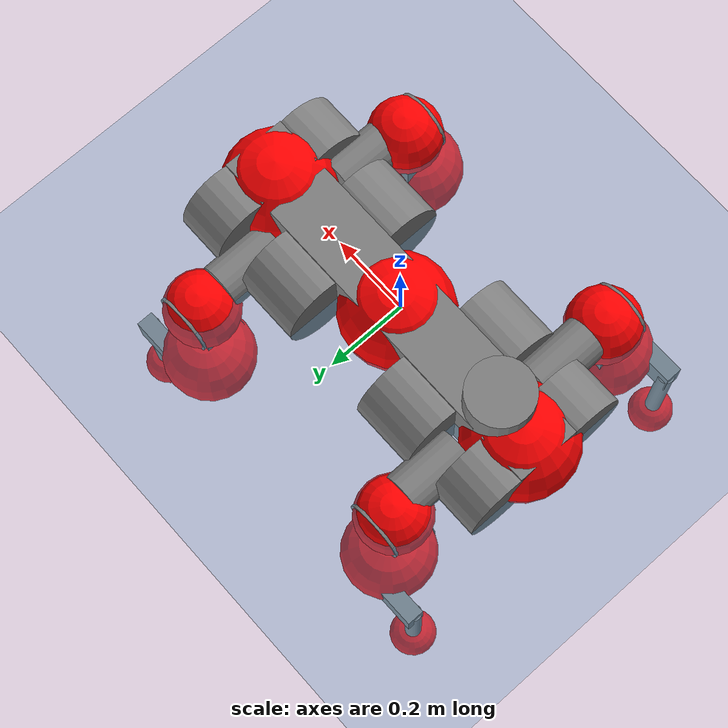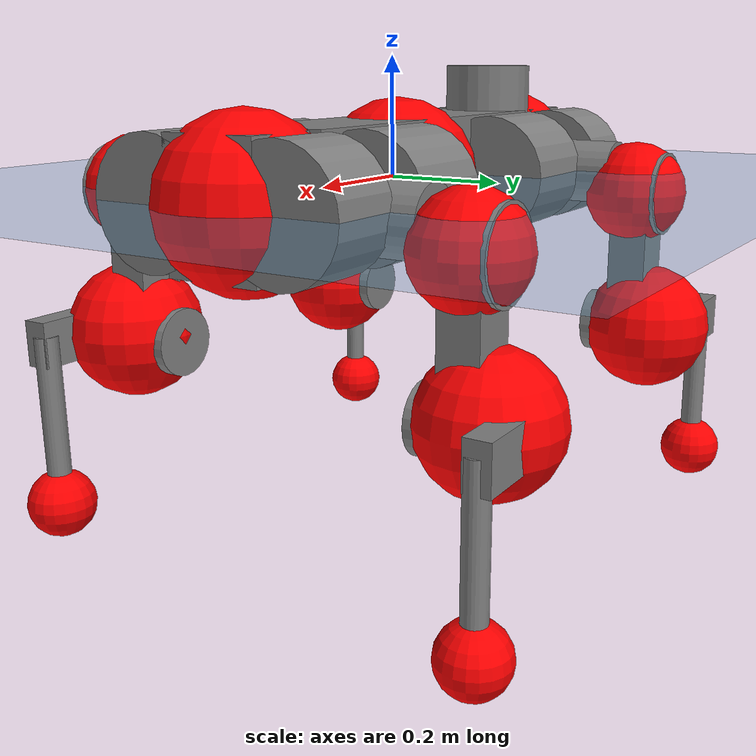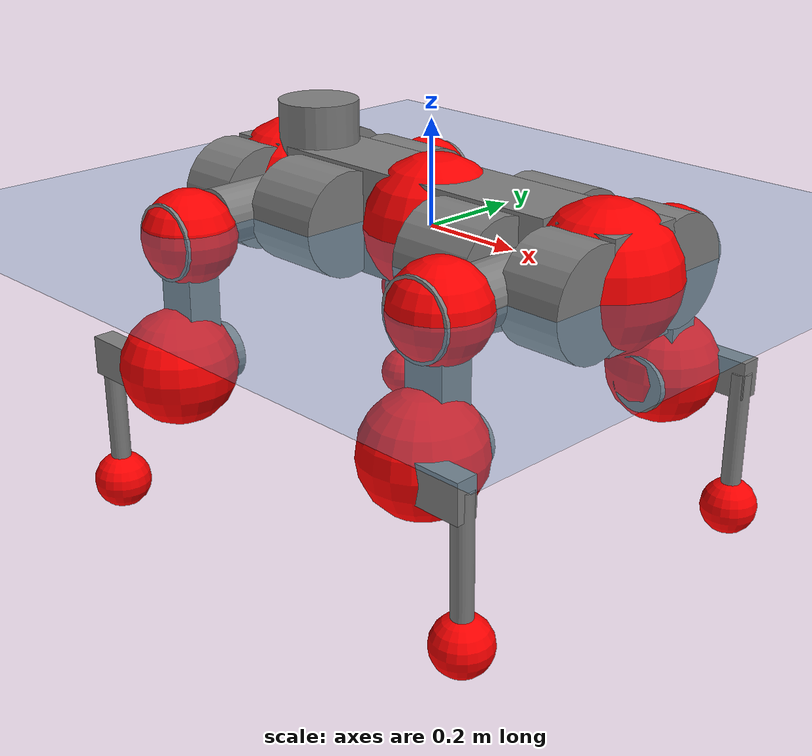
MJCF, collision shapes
<mujoco model="anymal_c">
  <compiler angle="radian" assetdir="assets" balanceinertia="true" inertiafromgeom="false"/>

  <option timestep="0.005" density="1.2" viscosity="2e-05"/>

  <size nkey="1"/>

  <visual>
    <quality shadowsize="8192"/>
    <map shadowclip="0.5"/>
  </visual>

  <default>
    <default class="/">
      <material specular="0" shininess="0.25"/>
      <geom contype="0" conaffinity="0" group="1" solref="-1000 -80"/>
      <site size="0.01 0.005 0.005" group="5"/>
      <general forcelimited="true" forcerange="-80 80" biastype="affine" gainprm="80" biasprm="0 -80 -2"/>
      <default class="anymal_c">
        <joint armature="0.01" damping="0.01" frictionloss="0.1"/>
        <default class="visual">
          <geom type="mesh" group="2"/>
          <default class="visual_zflip"/>
        </default>
        <default class="collision">
          <geom type="cylinder" group="3"/>
          <default class="foot">
            <geom size="0.03 0 0" type="sphere" condim="6" priority="1" friction="0.8 0.02 0.01" solimp="0.015 1 0.03"/>
          </default>
        </default>
      </default>
      <default class="reward_collision_sphere">
        <geom group="5" rgba="1 0 0 1"/>
      </default>
    </default>
  </default>

  <asset>
    <texture type="skybox" colorspace="auto" name="//unnamed_texture_0" builtin="gradient" rgb1="0.95 0.95 0.95" rgb2="0.95 0.95 0.95" width="100" height="600"/>
    <texture type="2d" colorspace="auto" name="texplane" builtin="checker" rgb1="0.345 0.575 0.748" rgb2="0.345 0.575 0.748" markrgb="1 1 1" width="512" height="512"/>
    <texture type="2d" colorspace="linear" name="base" file="base.png"/>
    <texture type="2d" colorspace="linear" name="top_shell" file="top_shell.png"/>
    <texture type="2d" colorspace="linear" name="bottom_shell" file="bottom_shell.png"/>
    <texture type="2d" colorspace="linear" name="remote" file="remote.png"/>
    <texture type="2d" colorspace="linear" name="hatch" file="hatch.png"/>
    <texture type="2d" colorspace="linear" name="handle" file="handle.png"/>
    <texture type="2d" colorspace="linear" name="face" file="face.png"/>
    <texture type="2d" colorspace="linear" name="battery" file="battery.png"/>
    <texture type="2d" colorspace="linear" name="lidar_cage" file="lidar_cage.png"/>
    <texture type="2d" colorspace="linear" name="depth_camera" file="depth_camera.png"/>
    <texture type="2d" colorspace="linear" name="wide_angle_camera" file="wide_angle_camera.png"/>
    <texture type="2d" colorspace="linear" name="lidar" file="lidar.png"/>
    <texture type="2d" colorspace="linear" name="drive" file="drive.png"/>
    <texture type="2d" colorspace="linear" name="hip_l" file="hip_l.png"/>
    <texture type="2d" colorspace="linear" name="shank_l" file="shank_l.png"/>
    <texture type="2d" colorspace="linear" name="foot" file="foot.png"/>
    <texture type="2d" colorspace="linear" name="thigh" file="thigh.png"/>
    <texture type="2d" colorspace="linear" name="shank_r" file="shank_r.png"/>
    <texture type="2d" colorspace="linear" name="hip_r" file="hip_r.png"/>
    <material name="MatPlane" class="/" texture="texplane" texuniform="true" texrepeat="2 2" specular="0.9" shininess="0.5"/>
    <material name="black_plastic" class="/" rgba="0.007 0.007 0.007 1"/>
    <material name="green" class="/" rgba="0.052 0.178 0.033 1"/>
    <material name="red" class="/" rgba="0.178 0.006 0.005 1"/>
    <material name="yellow" class="/" rgba="0.178 0.119 0.006 1"/>
    <material name="lwl" class="/" rgba="0.8 0.8 0.8 1"/>
    <material name="base" class="/" texture="base"/>
    <material name="top_shell" class="/" texture="top_shell"/>
    <material name="bottom_shell" class="/" texture="bottom_shell"/>
    <material name="hip_l" class="/" texture="hip_l"/>
    <material name="thigh" class="/" texture="thigh"/>
    <material name="shank_l" class="/" texture="shank_l"/>
    <material name="foot" class="/" texture="foot"/>
    <material name="hip_r" class="/" texture="hip_r"/>
    <material name="shank" class="/" texture="shank_r"/>
    <material name="hatch" class="/" texture="hatch"/>
    <material name="remote" class="/" texture="remote"/>
    <material name="handle" class="/" texture="handle"/>
    <material name="face" class="/" texture="face"/>
    <material name="depth_camera" class="/" texture="depth_camera"/>
    <material name="wide_angle_camera" class="/" texture="wide_angle_camera"/>
    <material name="battery" class="/" texture="battery"/>
    <material name="lidar_cage" class="/" texture="lidar_cage"/>
    <material name="lidar" class="/" texture="lidar"/>
    <material name="drive" class="/" texture="drive"/>
    <mesh name="base_0" class="/" file="base_0.obj"/>
    <mesh name="base_1" class="/" file="base_1.obj"/>
    <mesh name="base_2" class="/" file="base_2.obj"/>
    <mesh name="base_3" class="/" file="base_3.obj"/>
    <mesh name="base_4" class="/" file="base_4.obj"/>
    <mesh name="base_5" class="/" file="base_5.obj"/>
    <mesh name="top_shell" class="/" file="top_shell.obj"/>
    <mesh name="bottom_shell" class="/" file="bottom_shell.obj"/>
    <mesh name="remote" class="/" file="remote.obj"/>
    <mesh name="handle" class="/" file="handle.obj"/>
    <mesh name="face" class="/" file="face.obj"/>
    <mesh name="wide_angle_camera" class="/" file="wide_angle_camera.obj"/>
    <mesh name="depth_camera" class="/" file="depth_camera.obj"/>
    <mesh name="battery" class="/" file="battery.obj"/>
    <mesh name="lidar_cage" class="/" file="lidar_cage.obj"/>
    <mesh name="lidar" class="/" file="lidar.obj"/>
    <mesh name="drive" class="/" file="drive.obj"/>
    <mesh name="hip_l" class="/" file="hip_l.obj"/>
    <mesh name="thigh" class="/" file="thigh.obj"/>
    <mesh name="shank_l" class="/" file="shank_l.obj"/>
    <mesh name="foot" class="/" file="foot.obj"/>
    <mesh name="hip_r" class="/" file="hip_r.obj"/>
    <mesh name="hatch" class="/" file="hatch.obj"/>
    <mesh name="shank_r" class="/" file="shank_r.obj"/>
  </asset>

  <worldbody>
    <geom name="floor" class="/" size="100 100 0.125" type="plane" group="0" material="MatPlane"/>
    <light name="toplight_shadow" class="/" pos="0 0 5" dir="0.0990148 0.0990148 -0.990148" type="directional" ambient="0.04 0.04 0.04" diffuse="0.55 0.55 0.55" specular="0.12 0.12 0.12"/>
    <light name="toplight_fill" class="/" pos="0 0 5" dir="0.0990148 0.0990148 -0.990148" type="directional" castshadow="false" ambient="0.04 0.04 0.04" diffuse="0.3 0.3 0.3" specular="0.08 0.08 0.08"/>
    <body name="trunk" childclass="anymal_c" pos="-0.000980606 0.0109229 -0.00132659" quat="1 -1.04943e-05 -9.66364e-05 -8.34564e-06">
      <inertial pos="-0.00258271 0.0116741 0.0436114" quat="0.533797 0.435836 0.528384 0.495901" mass="27.5943" diaginertia="0.374475 7.71007 0.105705"/>
      <joint name="//unnamed_joint_0" type="free" armature="0" damping="0" frictionloss="0"/>
      <geom name="//unnamed_geom_1" class="visual" material="green" mesh="base_0"/>
      <geom name="//unnamed_geom_2" class="visual" material="yellow" mesh="base_1"/>
      <geom name="//unnamed_geom_3" class="visual" material="red" mesh="base_2"/>
      <geom name="//unnamed_geom_4" class="visual" material="black_plastic" mesh="base_3"/>
      <geom name="//unnamed_geom_5" class="visual" material="lwl" mesh="base_4"/>
      <geom name="//unnamed_geom_6" class="visual" material="base" mesh="base_5"/>
      <geom name="trunk_1" class="collision" size="0.325606 0.0785947 0.10105" type="box"/>
      <geom name="trunk_2" class="collision" size="0.10105 0.0814016" pos="0.191429 0.113544 0" quat="0.707107 0 0.707107 0"/>
      <geom name="trunk_3" class="collision" size="0.10105 0.0814016" pos="-0.191429 0.113544 0" quat="0.707107 0 0.707107 0"/>
      <geom name="trunk_4" class="collision" size="0.10105 0.0814016" pos="0.191429 -0.113544 0" quat="0.707107 0 0.707107 0"/>
      <geom name="trunk_5" class="collision" size="0.10105 0.0814016" pos="-0.191429 -0.113544 0" quat="0.707107 0 0.707107 0"/>
      <geom name="//unnamed_geom_12" class="visual" material="top_shell" mesh="top_shell"/>
      <geom name="//unnamed_geom_13" class="visual" material="bottom_shell" mesh="bottom_shell"/>
      <geom name="//unnamed_geom_14" class="visual" material="remote" mesh="remote"/>
      <geom name="//unnamed_geom_15" class="visual" material="handle" mesh="handle"/>
      <geom name="//unnamed_geom_16" class="visual" pos="0.364816 0 0" quat="1 0 0 0" material="face" mesh="face"/>
      <geom name="trunk_6" class="collision" size="0.0617529 0.0785947 0.10105" pos="0.413223 0 0" type="box"/>
      <geom name="//unnamed_geom_18" class="collision" size="0.10105 0.0617529" pos="0.413223 0.113544 0" quat="0.707107 0 0.707107 0"/>
      <geom name="//unnamed_geom_19" class="collision" size="0.10105 0.0617529" pos="0.413223 -0.113544 0" quat="0.707107 0 0.707107 0"/>
      <geom name="//unnamed_geom_20" class="visual" pos="0.406314 0 -0.0251855" quat="0.965926 0 0.258819 0" material="depth_camera" mesh="depth_camera"/>
      <geom name="//unnamed_geom_21" class="visual" pos="0.451509 0 0.0129663" material="wide_angle_camera" mesh="wide_angle_camera"/>
      <geom name="//unnamed_geom_22" class="visual_zflip" pos="-0.364816 0 0" quat="0 0 0 1" material="face" mesh="face"/>
      <geom name="trunk_7" class="collision" size="0.0617529 0.0785947 0.10105" pos="-0.413223 0 0" quat="0 0 0 1" type="box"/>
      <geom name="//unnamed_geom_24" class="collision" size="0.10105 0.0617529" pos="-0.413223 -0.113544 0" quat="0 -0.707107 0 0.707107"/>
      <geom name="//unnamed_geom_25" class="collision" size="0.10105 0.0617529" pos="-0.413223 0.113544 0" quat="0 -0.707107 0 0.707107"/>
      <geom name="//unnamed_geom_26" class="visual" pos="-0.406314 0 -0.0251855" quat="0 -0.258819 0 0.965926" material="depth_camera" mesh="depth_camera"/>
      <geom name="//unnamed_geom_27" class="visual_zflip" pos="-0.451509 0 0.0129663" quat="0 0 0 1" material="wide_angle_camera" mesh="wide_angle_camera"/>
      <geom name="//unnamed_geom_28" class="visual" material="battery" mesh="battery"/>
      <geom name="//unnamed_geom_29" class="visual" pos="0 0.133757 0.025268" quat="0.683013 -0.183013 0.183013 0.683013" material="depth_camera" mesh="depth_camera"/>
      <geom name="//unnamed_geom_30" class="visual" pos="0 -0.133757 0.025268" quat="0.683013 0.183013 0.183013 -0.683013" material="depth_camera" mesh="depth_camera"/>
      <geom name="//unnamed_geom_31" class="visual" pos="-0.320369 0 0.0636624" quat="1 0 0 0" material="lidar_cage" mesh="lidar_cage"/>
      <geom name="trunk_8" class="collision" size="0.0785947 0.0673668" pos="-0.320369 0 0.115632"/>
      <geom name="//unnamed_geom_33" class="visual" pos="-0.320369 0.00029148 0.123167" quat="0.707107 0 0 -0.707107" material="lidar" mesh="lidar"/>
      <geom name="//unnamed_geom_34" class="visual" pos="0.263952 0.168425 1.30393e-08" quat="0.258819 0.965926 0 0" material="drive" mesh="drive"/>
      <geom name="//unnamed_geom_35" class="visual" pos="0.263952 -0.168425 -1.30393e-08" quat="0.258819 -0.965926 0 0" material="drive" mesh="drive"/>
      <geom name="//unnamed_geom_36" class="visual" pos="-0.263952 0.168425 -1.30393e-08" quat="0 0 0.965926 -0.258819" material="drive" mesh="drive"/>
      <geom name="//unnamed_geom_37" class="visual" pos="-0.263952 -0.168425 1.30393e-08" quat="0 0 -0.965926 -0.258819" material="drive" mesh="drive"/>
      <geom name="//unnamed_geom_38" class="visual" pos="0.102096 0 0.0632293" quat="1 0 0 0" material="hatch" mesh="hatch"/>
      <geom name="//unnamed_geom_39" class="reward_collision_sphere" size="0.134734"/>
      <geom name="//unnamed_geom_40" class="reward_collision_sphere" size="0.134734" pos="0.396061 0 0"/>
      <geom name="//unnamed_geom_41" class="reward_collision_sphere" size="0.134734" pos="-0.396061 0 0"/>
      <site name="imu" pos="0.166046 -0.0274778 0.0946193" size="0.0112278"/>
      <camera name="track" pos="0 -3.24411 0" quat="0.707107 0.707107 0 0" mode="trackcom"/>
      <camera name="ego_camera" pos="0.396061 0 -0.0346462" quat="-0.5 -0.5 0.5 0.5"/>
      <body name="LF_HIP" pos="0.254595 0.153555 -0.0128723" quat="0.261241 0.96526 0.00495023 0.00120814">
        <inertial pos="0.0523062 -0.0251899 -0.0145677" quat="-0.122129 0.708224 -0.140397 0.681022" mass="4.46171" diaginertia="0.00304368 0.0604243 0.00154404"/>
        <joint name="LF_HAA" pos="0 0 0" axis="1 0.000447077 -0.000766978" range="-1.02911 0.334767" armature="0.0120766" damping="0.0627753" frictionloss="0.0589428"/>
        <geom name="//unnamed_geom_42" class="visual" pos="0 0.000767045 -0.000125986" quat="0.258819 -0.965926 0 0" material="hip_l" mesh="hip_l"/>
        <geom name="//unnamed_geom_43" class="visual" pos="0.0527201 -0.0733815 -0.0367758" quat="0.183013 -0.683013 0.683013 0.183013" material="drive" mesh="drive"/>
        <geom name="//unnamed_geom_44" class="collision" size="0.056139 0.0785947" pos="0.0527201 -0.0193994 -0.0059808" quat="-0.353553 -0.612372 0.612372 -0.353553"/>
        <body name="LF_THIGH" pos="0.0535608 -0.13296 -0.0330398" quat="0.1863 -0.681447 0.684506 0.179927">
          <inertial pos="0.0171326 -0.00858304 -0.215263" quat="0.992466 0.00624315 -0.117037 0.0357143" mass="4.33677" diaginertia="0.0155761 0.337169 0.0021482"/>
          <joint name="LF_HFE" pos="0 0 0" axis="0.998439 0.0343759 0.0440316" stiffness="0.00492527" range="-3.28155 2.8687" armature="0.0047329" damping="0" frictionloss="0.0799277"/>
          <geom name="//unnamed_geom_45" class="visual" pos="-0.0147612 -2.32603e-05 0" quat="0.707107 0 0 -0.707107" material="thigh" mesh="thigh"/>
          <geom name="//unnamed_geom_46" class="collision" size="0.0729808 0.0449112" pos="0.0352054 0 0" quat="0.5 0.5 -0.5 -0.5"/>
          <geom name="//unnamed_geom_47" class="collision" size="0.0421043 0.0336834 0.158665" pos="0.0264041 0 -0.1224" quat="0.707107 0 0 -0.707107" type="box"/>
          <geom name="//unnamed_geom_48" class="visual" pos="0.0882775 0 -0.246854" quat="1 0 0 0" material="drive" mesh="drive"/>
          <geom name="//unnamed_geom_49" class="collision" size="0.056139 0.0785947" pos="0.0266681 0 -0.246854" quat="0.707107 0 0.707107 0"/>
          <geom name="//unnamed_geom_50" class="reward_collision_sphere" size="0.0898225" pos="0.0220034 0 0"/>
          <body name="LF_SHANK" pos="0.0932791 0.0134042 -0.241114" quat="0.999992 -0.00266235 0.00045872 -0.00278139">
            <inertial pos="-0.00441665 -0.0990006 -0.0551525" quat="0.993228 -0.114081 -0.00373558 -0.02166" mass="0.863353" diaginertia="0.00615725 0.0866556 0.000650439"/>
            <joint name="LF_KFE" pos="0 0 0" axis="0.999996 0.000536622 -0.00291695" stiffness="0.00424136" range="-2.85071 3.15445" armature="0.0160196" damping="0.0125993" frictionloss="0.106184"/>
            <geom name="//unnamed_geom_51" class="visual" pos="-0.00481332 -0.0256649 0" quat="0.707107 0 0 -0.707107" material="shank_l" mesh="shank_l"/>
            <geom name="LF_kfe_act" class="collision" size="0.0673668 0.0224556" pos="0.0176027 0 0" quat="0.5 0.5 -0.5 -0.5"/>
            <geom name="//unnamed_geom_53" class="collision" size="0.0645588 0.0378939 0.0213328" pos="0.0176027 -0.0932664 0" quat="0.5 0.5 -0.5 -0.5" type="box"/>
            <geom name="//unnamed_geom_54" class="visual" pos="0.0114869 -0.15093 -0.292734" quat="0.382683 0 0 -0.92388" material="foot" mesh="foot"/>
            <geom name="LF_calf" class="collision" size="0.0196487 0.158595" pos="0.0114858 -0.14266 -0.146367" quat="0.707107 0 0 -0.707107"/>
            <geom name="LF_foot" class="foot" size="0.0312949" pos="0.0114858 -0.14266 -0.273246" quat="0.707107 0 0 -0.707107"/>
            <geom name="//unnamed_geom_57" class="reward_collision_sphere" size="0.112278" pos="-0.0440068 0 0"/>
            <geom name="//unnamed_geom_58" class="reward_collision_sphere" size="0.056139" pos="0.0114858 -0.14266 -0.273246"/>
            <site name="LF_foot" class="foot" pos="0.0114858 -0.14266 -0.273246" quat="0.707107 0 0 -0.707107" size="0.0112278"/>
          </body>
        </body>
      </body>
      <body name="RF_HIP" pos="0.264851 -0.161527 0.00637657" quat="0.259151 -0.965836 -0.00103756 3.05848e-05">
        <inertial pos="0.0555835 0.0211979 -0.0109825" quat="0.133211 0.680372 0.125427 0.70966" mass="4.48073" diaginertia="0.00323221 0.0649959 0.00135721"/>
        <joint name="RF_HAA" pos="0 0 0" axis="0.99892 0.0209527 -0.0414764" stiffness="0.0264051" range="-0.509582 0.722416" armature="0.00889122" damping="0" frictionloss="0.0817078"/>
        <geom name="//unnamed_geom_59" class="visual" pos="0 -0.000767038 -0.000125986" quat="0.258819 0.965926 0 0" material="hip_r" mesh="hip_r"/>
        <geom name="//unnamed_geom_60" class="visual" pos="0.0527201 0.0733815 -0.0367758" quat="0.183013 0.683013 0.683013 -0.183013" material="drive" mesh="drive"/>
        <geom name="//unnamed_geom_61" class="collision" size="0.056139 0.0785947" pos="0.0527201 0.0193994 -0.0059808" quat="-0.353553 0.612372 0.612372 0.353553"/>
        <body name="RF_THIGH" pos="0.0393268 0.102755 -0.0445514" quat="0.18376 0.681973 0.684642 -0.180029">
          <inertial pos="0.0344397 0.0150699 -0.212058" quat="0.990687 -0.0297335 -0.0609343 0.118076" mass="3.24439" diaginertia="0.0134394 0.288767 0.00186952"/>
          <joint name="RF_HFE" pos="0 0 0" axis="0.999861 -0.0131478 -0.0102262" stiffness="0.028096" range="-2.86482 3.14309" armature="0.0102743" damping="0" frictionloss="0.110092"/>
          <geom name="//unnamed_geom_62" class="visual" pos="-0.0147612 -2.32603e-05 0" quat="0.707107 0 0 -0.707107" material="thigh" mesh="thigh"/>
          <geom name="//unnamed_geom_63" class="collision" size="0.0729808 0.0449112" pos="0.0352054 0 0" quat="0.5 0.5 0.5 0.5"/>
          <geom name="//unnamed_geom_64" class="collision" size="0.0421043 0.0336834 0.158665" pos="0.0264041 0 -0.1224" quat="0.707107 0 0 0.707107" type="box"/>
          <geom name="//unnamed_geom_65" class="visual" pos="0.0882775 0 -0.246854" quat="1 0 0 0" material="drive" mesh="drive"/>
          <geom name="//unnamed_geom_66" class="collision" size="0.056139 0.0785947" pos="0.0266681 0 -0.246854" quat="0.707107 0 0.707107 0"/>
          <geom name="//unnamed_geom_67" class="reward_collision_sphere" size="0.0898225" pos="0.0220034 0 0"/>
          <body name="RF_SHANK" pos="0.102226 -0.0008578 -0.238106" quat="0.999981 -0.00104788 0.00595749 -0.00102818">
            <inertial pos="-0.000964849 0.100505 -0.0795768" quat="0.992357 0.103357 -0.0091168 0.0667925" mass="0.822227" diaginertia="0.00514089 0.105466 0.000513137"/>
            <joint name="RF_KFE" pos="0 0 0" axis="0.997252 0.0187128 0.0716779" stiffness="0.0316905" range="-3.18768 3.15898" armature="0.00421428" damping="0" frictionloss="0.18039"/>
            <geom name="//unnamed_geom_68" class="visual" pos="-0.00481329 0.0256648 0" quat="0.707107 0 0 0.707107" material="shank" mesh="shank_r"/>
            <geom name="RF_kfe_act" class="collision" size="0.0673668 0.0224556" pos="0.0176027 0 0" quat="0.5 0.5 0.5 0.5"/>
            <geom name="//unnamed_geom_70" class="collision" size="0.0645588 0.0378939 0.0213328" pos="0.0176027 0.0932664 0" quat="0.5 0.5 0.5 0.5" type="box"/>
            <geom name="//unnamed_geom_71" class="visual" pos="0.0114846 0.15093 -0.292734" quat="0.382683 0 0 0.92388" material="foot" mesh="foot"/>
            <geom name="RF_calf" class="collision" size="0.0196487 0.158595" pos="0.0114858 0.14266 -0.146367" quat="0.707107 0 0 0.707107"/>
            <geom name="RF_foot" class="foot" size="0.0402422" pos="0.0114858 0.14266 -0.273246" quat="0.707107 0 0 0.707107"/>
            <geom name="//unnamed_geom_74" class="reward_collision_sphere" size="0.112278" pos="-0.0440068 0 0"/>
            <geom name="//unnamed_geom_75" class="reward_collision_sphere" size="0.056139" pos="0.0114858 0.14266 -0.273246"/>
            <site name="RF_foot" class="foot" pos="0.0114858 0.14266 -0.273246" quat="0.707107 0 0 0.707107" size="0.0112278"/>
          </body>
        </body>
      </body>
      <body name="LH_HIP" pos="-0.265428 0.170854 -0.00108233" quat="0.00177401 -0.00159273 0.965613 -0.259972">
        <inertial pos="0.0508853 0.0364433 -0.0151127" quat="0.12247 0.666094 0.129954 0.724177" mass="3.41095" diaginertia="0.00288607 0.0511038 0.00145998"/>
        <joint name="LH_HAA" pos="0 0 0" axis="0.999768 0.0208287 -0.00557774" stiffness="0.0197698" range="-0.564319 0.845679" armature="0.0113125" damping="0.0137004" frictionloss="0.0946255"/>
        <geom name="//unnamed_geom_76" class="visual" pos="0 -0.000767038 -0.000125986" quat="-0.258819 -0.965926 0 0" material="hip_r" mesh="hip_r"/>
        <geom name="//unnamed_geom_77" class="visual" pos="0.0527201 0.0733815 -0.0367758" quat="0.183013 0.683013 0.683013 -0.183013" material="drive" mesh="drive"/>
        <geom name="//unnamed_geom_78" class="collision" size="0.056139 0.0785947" pos="0.0527201 0.0193994 -0.0059808" quat="-0.353553 0.612372 0.612372 0.353553"/>
        <body name="LH_THIGH" pos="0.0615799 0.114497 -0.0225016" quat="0.181607 0.682575 0.683639 -0.183707">
          <inertial pos="0.0282687 0.00146958 -0.198862" quat="0.992117 -0.0439109 -0.0896124 0.0757936" mass="3.26023" diaginertia="0.0156095 0.286721 0.00192484"/>
          <joint name="LH_HFE" pos="0 0 0" axis="0.999819 0.00715724 -0.0176354" stiffness="0.00433505" range="-2.92293 2.96248" armature="0.0142419" damping="0.0685257" frictionloss="0.120239"/>
          <geom name="//unnamed_geom_79" class="visual" pos="-0.0147612 -2.32603e-05 0" quat="0.707107 0 0 -0.707107" material="thigh" mesh="thigh"/>
          <geom name="//unnamed_geom_80" class="collision" size="0.0729808 0.0449112" pos="0.0352054 0 0" quat="0.5 0.5 -0.5 -0.5"/>
          <geom name="//unnamed_geom_81" class="collision" size="0.0421043 0.0336834 0.158665" pos="0.0264041 0 -0.1224" quat="0.707107 0 0 -0.707107" type="box"/>
          <geom name="//unnamed_geom_82" class="visual" pos="0.0882775 0 -0.246854" quat="1 0 0 0" material="drive" mesh="drive"/>
          <geom name="//unnamed_geom_83" class="collision" size="0.056139 0.0785947" pos="0.0266681 0 -0.246854" quat="0.707107 0 0.707107 0"/>
          <geom name="//unnamed_geom_84" class="reward_collision_sphere" size="0.0898225" pos="0.0220034 0 0"/>
          <body name="LH_SHANK" pos="0.0968061 0.0152157 -0.249615" quat="0.999998 0.000106161 -0.00108698 0.00161061">
            <inertial pos="0.00610659 0.0991277 -0.0676551" quat="0.992744 0.116953 -0.000173819 0.0279584" mass="0.661523" diaginertia="0.00404519 0.0932294 0.000493023"/>
            <joint name="LH_KFE" pos="0 0 0" axis="0.998861 0.0462923 -0.0115983" stiffness="0.0032316" range="-3.43651 3.35403" armature="0.0113615" damping="0.0420404" frictionloss="0.109973"/>
            <geom name="//unnamed_geom_85" class="visual" pos="-0.00481329 0.0256648 0" quat="-0.707107 0 0 -0.707107" material="shank" mesh="shank_r"/>
            <geom name="LH_kfe_act" class="collision" size="0.0673668 0.0224556" pos="0.0176027 0 0" quat="0.5 0.5 -0.5 -0.5"/>
            <geom name="//unnamed_geom_87" class="collision" size="0.0645588 0.0378939 0.0213328" pos="0.0176027 0.0932664 0" quat="0.5 0.5 -0.5 -0.5" type="box"/>
            <geom name="//unnamed_geom_88" class="visual" pos="0.0114846 0.15093 -0.292734" quat="-0.382683 0 0 -0.92388" material="foot" mesh="foot"/>
            <geom name="LH_calf" class="collision" size="0.0196487 0.158595" pos="0.0114858 0.14266 -0.146367" quat="0.707107 0 0 -0.707107"/>
            <geom name="LH_foot" class="foot" size="0.0263674" pos="0.0114858 0.14266 -0.273246" quat="0.707107 0 0 -0.707107"/>
            <geom name="//unnamed_geom_91" class="reward_collision_sphere" size="0.112278" pos="-0.0440068 0 0"/>
            <geom name="//unnamed_geom_92" class="reward_collision_sphere" size="0.056139" pos="0.0114858 0.14266 -0.273246"/>
            <site name="LH_foot" class="foot" pos="0.0114858 0.14266 -0.273246" quat="0.707107 0 0 -0.707107" size="0.0112278"/>
          </body>
        </body>
      </body>
      <body name="RH_HIP" pos="-0.268906 -0.16675 0.00421203" quat="-0.00139921 0.00593521 -0.965802 -0.259209">
        <inertial pos="0.0455993 -0.0368665 0.00213181" quat="-0.143378 0.71606 -0.13828 0.669014" mass="3.51165" diaginertia="0.002405 0.0459437 0.001197"/>
        <joint name="RH_HAA" pos="0 0 0" axis="0.998018 0.0265696 0.0570487" range="-0.679899 0.757093" armature="0.0106999" damping="0.0315843" frictionloss="0.10304"/>
        <geom name="//unnamed_geom_93" class="visual" pos="0 0.000767045 -0.000125986" quat="-0.258819 0.965926 0 0" material="hip_l" mesh="hip_l"/>
        <geom name="//unnamed_geom_94" class="visual" pos="0.0527201 -0.0733815 -0.0367758" quat="-0.183013 0.683013 -0.683013 -0.183013" material="drive" mesh="drive"/>
        <geom name="//unnamed_geom_95" class="collision" size="0.056139 0.0785947" pos="0.0527201 -0.0193994 -0.0059808" quat="0.353553 0.612372 -0.612372 0.353553"/>
        <body name="RH_THIGH" pos="0.0534833 -0.127762 -0.042383" quat="-0.181653 0.684151 -0.680666 -0.188769">
          <inertial pos="0.0281747 0.0131657 -0.221327" quat="0.991459 -0.00494741 -0.0814497 0.101737" mass="4.78603" diaginertia="0.0174176 0.371384 0.00224908"/>
          <joint name="RH_HFE" pos="0 0 0" axis="0.99768 0.0662085 0.0158246" stiffness="0.0284119" range="-3.19324 2.97851" armature="0.011465" damping="0.00246652" frictionloss="0.0959288"/>
          <geom name="//unnamed_geom_96" class="visual" pos="-0.0147612 -2.32603e-05 0" quat="0.707107 0 0 -0.707107" material="thigh" mesh="thigh"/>
          <geom name="//unnamed_geom_97" class="collision" size="0.0729808 0.0449112" pos="0.0352054 0 0" quat="0.5 0.5 0.5 0.5"/>
          <geom name="//unnamed_geom_98" class="collision" size="0.0421043 0.0336834 0.158665" pos="0.0264041 0 -0.1224" quat="0.707107 0 0 0.707107" type="box"/>
          <geom name="//unnamed_geom_99" class="visual" pos="0.0882775 0 -0.246854" quat="1 0 0 0" material="drive" mesh="drive"/>
          <geom name="//unnamed_geom_100" class="collision" size="0.056139 0.0785947" pos="0.0266681 0 -0.246854" quat="0.707107 0 0.707107 0"/>
          <geom name="//unnamed_geom_101" class="reward_collision_sphere" size="0.0898225" pos="0.0220034 0 0"/>
          <body name="RH_SHANK" pos="0.104274 -0.00380808 -0.249807" quat="0.999994 0.00238261 0.00228711 -0.0010744">
            <inertial pos="-0.0106867 -0.0991779 -0.0652872" quat="0.992227 -0.11541 -0.0280456 -0.0371521" mass="0.847258" diaginertia="0.00451193 0.110568 0.000526746"/>
            <joint name="RH_KFE" pos="0 0 0" axis="0.997647 -0.0165557 0.0665342" stiffness="0.0376695" range="-2.90008 2.86961" armature="0.0185071" damping="0.00270208" frictionloss="0.115797"/>
            <geom name="//unnamed_geom_102" class="visual" pos="-0.00481332 -0.0256649 0" quat="0.707107 0 0 -0.707107" material="shank_l" mesh="shank_l"/>
            <geom name="RH_kfe_act" class="collision" size="0.0673668 0.0224556" pos="0.0176027 0 0" quat="0.5 0.5 0.5 0.5"/>
            <geom name="//unnamed_geom_104" class="collision" size="0.0645588 0.0378939 0.0213328" pos="0.0176027 -0.0932664 0" quat="0.5 0.5 0.5 0.5" type="box"/>
            <geom name="//unnamed_geom_105" class="visual" pos="0.0114869 -0.15093 -0.292734" quat="0.382683 0 0 -0.92388" material="foot" mesh="foot"/>
            <geom name="RH_calf" class="collision" size="0.0196487 0.158595" pos="0.0114858 -0.14266 -0.146367" quat="0.707107 0 0 0.707107"/>
            <geom name="RH_foot" class="foot" size="0.0440065" pos="0.0114858 -0.14266 -0.273246" quat="0.707107 0 0 0.707107"/>
            <geom name="//unnamed_geom_108" class="reward_collision_sphere" size="0.112278" pos="-0.0440068 0 0"/>
            <geom name="//unnamed_geom_109" class="reward_collision_sphere" size="0.056139" pos="0.0114858 -0.14266 -0.273246"/>
            <site name="RH_foot" class="foot" pos="0.0114858 -0.14266 -0.273246" quat="0.707107 0 0 0.707107" size="0.0112278"/>
          </body>
        </body>
      </body>
    </body>
  </worldbody>

  <contact>
    <pair class="/" geom1="floor" geom2="LF_foot" name="//unnamed_contact_0"/>
    <pair class="/" geom1="floor" geom2="RF_foot" name="//unnamed_contact_1"/>
    <pair class="/" geom1="floor" geom2="LH_foot" name="//unnamed_contact_2"/>
    <pair class="/" geom1="floor" geom2="RH_foot" name="//unnamed_contact_3"/>
  </contact>

  <actuator>
    <general name="LF_HAA" class="/" joint="LF_HAA" forcerange="-38.1903 38.1903" gainprm="59.2151" biasprm="0 -59.2151 -1.92385"/>
    <general name="LF_HFE" class="/" joint="LF_HFE" forcerange="-122.024 122.024" gainprm="59.2151" biasprm="0 -59.2151 -1.92385"/>
    <general name="LF_KFE" class="/" joint="LF_KFE" forcerange="-106.09 106.09" gainprm="59.2151" biasprm="0 -59.2151 -1.92385"/>
    <general name="RF_HAA" class="/" joint="RF_HAA" forcerange="-43.8407 43.8407" gainprm="59.2151" biasprm="0 -59.2151 -1.92385"/>
    <general name="RF_HFE" class="/" joint="RF_HFE" forcerange="-43.7353 43.7353" gainprm="59.2151" biasprm="0 -59.2151 -1.92385"/>
    <general name="RF_KFE" class="/" joint="RF_KFE" forcerange="-58.272 58.272" gainprm="59.2151" biasprm="0 -59.2151 -1.92385"/>
    <general name="LH_HAA" class="/" joint="LH_HAA" forcerange="-102.497 102.497" gainprm="59.2151" biasprm="0 -59.2151 -1.92385"/>
    <general name="LH_HFE" class="/" joint="LH_HFE" forcerange="-83.265 83.265" gainprm="59.2151" biasprm="0 -59.2151 -1.92385"/>
    <general name="LH_KFE" class="/" joint="LH_KFE" forcerange="-118.266 118.266" gainprm="59.2151" biasprm="0 -59.2151 -1.92385"/>
    <general name="RH_HAA" class="/" joint="RH_HAA" forcerange="-138.517 138.517" gainprm="59.2151" biasprm="0 -59.2151 -1.92385"/>
    <general name="RH_HFE" class="/" joint="RH_HFE" forcerange="-97.1586 97.1586" gainprm="59.2151" biasprm="0 -59.2151 -1.92385"/>
    <general name="RH_KFE" class="/" joint="RH_KFE" forcerange="-87.578 87.578" gainprm="59.2151" biasprm="0 -59.2151 -1.92385"/>
  </actuator>

  <sensor>
    <gyro site="imu" name="imu_angular_velocity"/>
    <velocimeter site="imu" name="imu_linear_velocity"/>
    <framelinvel objtype="site" objname="LF_foot" name="LF_foot_global_linear_velocity"/>
    <framelinvel objtype="site" objname="RF_foot" name="RF_foot_global_linear_velocity"/>
    <framelinvel objtype="site" objname="LH_foot" name="LH_foot_global_linear_velocity"/>
    <framelinvel objtype="site" objname="RH_foot" name="RH_foot_global_linear_velocity"/>
  </sensor>

  <keyframe>
    <key name="home" qpos="0 0 0.55 1 0 0 0 0 0.4 -0.8 0 -0.4 0.8 0 -0.4 0.8 0 0.4 -0.8"/>
  </keyframe>
</mujoco>
